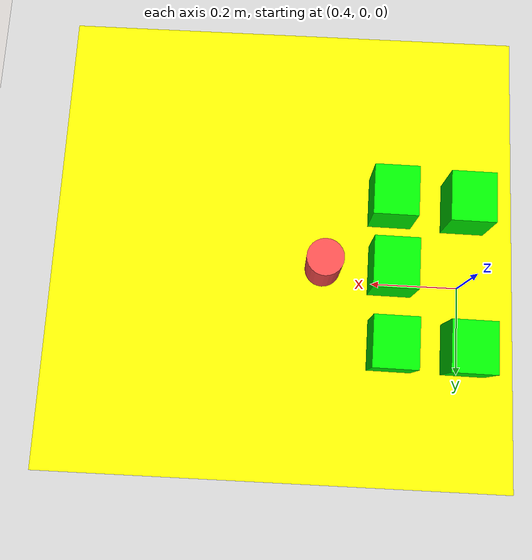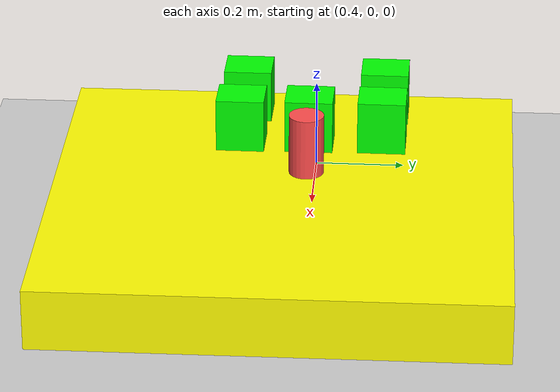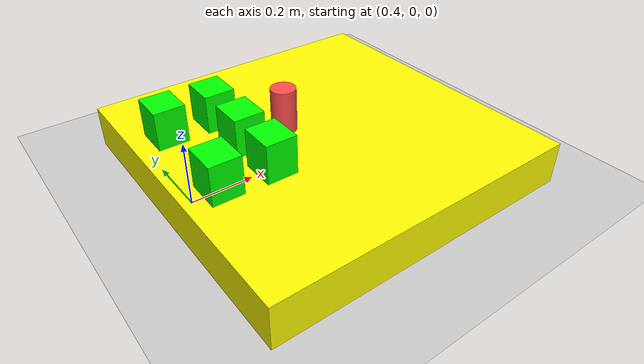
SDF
<sdf version="1.6">
 <world name="default">
  <light name="sun" type="directional">
   <pose>0 0 10 0 -0 0</pose>
   <diffuse>0.8 0.8 0.8 1</diffuse>
   <specular>0.1 0.1 0.1 1</specular>
   <attenuation>
    <range>1000</range>
    <constant>0.9</constant>
    <linear>0.01</linear>
    <quadratic>0.001</quadratic>
   </attenuation>
   <direction>-0.5 0.5 -1</direction>
  </light>
  <model name="ground_plane">
   <static>1</static>
   <link name="link">
    <collision name="collision">
     <geometry><plane><normal>0 0 1</normal><size>100 100</size></plane></geometry>
     <surface><friction><ode><mu>100</mu><mu2>50</mu2></ode></friction></surface>
    </collision>
    <visual name="visual">
     <cast_shadows>0</cast_shadows>
     <geometry><plane><normal>0 0 1</normal><size>100 100</size></plane></geometry>
     <material>
      <script><uri>file://media/materials/scripts/gazebo.material</uri><name>Gazebo/Grey</name></script>
     </material>
    </visual>
   </link>
  </model>
  <gravity>0 0 -9.8</gravity>
  <magnetic_field>6e-06 2.3e-05 -4.2e-05</magnetic_field>
  <atmosphere type="adiabatic"/>
  <physics name="default_physics" default="0" type="ode">
   <max_step_size>0.001</max_step_size>
   <real_time_factor>1</real_time_factor>
   <real_time_update_rate>1000</real_time_update_rate>
  </physics>
  <scene><ambient>0.4 0.4 0.4 1</ambient><background>0.7 0.7 0.7 1</background><shadows>1</shadows></scene>
  <spherical_coordinates>
   <surface_model>EARTH_WGS84</surface_model>
   <latitude_deg>0</latitude_deg>
   <longitude_deg>0</longitude_deg>
   <elevation>0</elevation>
   <heading_deg>0</heading_deg>
  </spherical_coordinates>
  <model name="unit_box_0_0_0">
   <link name="link">
    <inertial>
     <mass>100</mass>
     <inertia>
      <ixx>0.166667</ixx>
      <ixy>0</ixy>
      <ixz>0</ixz>
      <iyy>0.166667</iyy>
      <iyz>0</iyz>
      <izz>0.166667</izz>
     </inertia>
    </inertial>
    <visual name="visual">
     <geometry><box><size>1 1 0.134445</size></box></geometry>
     <material>
      <script><name>Gazebo/Grey</name><uri>file://media/materials/scripts/gazebo.material</uri></script>
      <ambient>0.3 0.3 0.3 1</ambient>
      <diffuse>1 0.99 0 1</diffuse>
      <specular>0.01 0.01 0.01 1</specular>
      <emissive>0 0 0 1</emissive>
      <shader type="vertex"><normal_map>__default__</normal_map></shader>
     </material>
    </visual>
    <collision name="collision">
     <geometry><box><size>1 1 0.134445</size></box></geometry>
     <surface>
      <friction>
       <ode><mu>1</mu><mu2>1</mu2><fdir1>0 0 0</fdir1><slip1>0</slip1><slip2>0</slip2></ode>
       <torsional>
        <coefficient>1</coefficient>
        <patch_radius>0</patch_radius>
        <surface_radius>0</surface_radius>
        <use_patch_radius>1</use_patch_radius>
        <ode><slip>0</slip></ode>
       </torsional>
      </friction>
      <bounce><restitution_coefficient>0</restitution_coefficient><threshold>1e+06</threshold></bounce>
      <contact>
       <collide_without_contact>0</collide_without_contact>
       <collide_without_contact_bitmask>1</collide_without_contact_bitmask>
       <collide_bitmask>1</collide_bitmask>
       <ode>
        <soft_cfm>0</soft_cfm>
        <soft_erp>0.2</soft_erp>
        <kp>1e+13</kp>
        <kd>1</kd>
        <max_vel>0.01</max_vel>
        <min_depth>0</min_depth>
       </ode>
       <bullet>
        <split_impulse>1</split_impulse>
        <split_impulse_penetration_threshold>-0.01</split_impulse_penetration_threshold>
        <soft_cfm>0</soft_cfm>
        <soft_erp>0.2</soft_erp>
        <kp>1e+13</kp>
        <kd>1</kd>
       </bullet>
      </contact>
     </surface>
    </collision>
   </link>
   <static>1</static>
   <pose>0.810858 -0.053495 0.067217 0 1.2e-05 -7.4e-05</pose>
  </model>
  <model name="green_box_0_0">
   <link name="link">
    <inertial>
     <mass>10</mass>
     <inertia>
      <ixx>0.166667</ixx>
      <ixy>0</ixy>
      <ixz>0</ixz>
      <iyy>0.166667</iyy>
      <iyz>0</iyz>
      <izz>0.166667</izz>
     </inertia>
    </inertial>
    <visual name="visual">
     <geometry><box><size>0.093811 0.10635 0.119204</size></box></geometry>
     <material>
      <script><name>Gazebo/Grey</name><uri>file://media/materials/scripts/gazebo.material</uri></script>
      <ambient>0.3 0.3 0.3 1</ambient>
      <diffuse>0 1 0 0</diffuse>
      <specular>0 1 0 0</specular>
      <emissive>0 0 0 1</emissive>
      <shader type="vertex"><normal_map>__default__</normal_map></shader>
     </material>
    </visual>
    <collision name="collision">
     <geometry><box><size>0.093811 0.10635 0.119204</size></box></geometry>
     <surface>
      <friction>
       <ode><mu>1</mu><mu2>1</mu2><fdir1>0 0 0</fdir1><slip1>0</slip1><slip2>0</slip2></ode>
       <torsional>
        <coefficient>1</coefficient>
        <patch_radius>0</patch_radius>
        <surface_radius>0</surface_radius>
        <use_patch_radius>1</use_patch_radius>
        <ode><slip>0</slip></ode>
       </torsional>
      </friction>
      <bounce><restitution_coefficient>0</restitution_coefficient><threshold>1e+06</threshold></bounce>
      <contact>
       <collide_without_contact>0</collide_without_contact>
       <collide_without_contact_bitmask>1</collide_without_contact_bitmask>
       <collide_bitmask>1</collide_bitmask>
       <ode>
        <soft_cfm>0</soft_cfm>
        <soft_erp>0.2</soft_erp>
        <kp>1e+13</kp>
        <kd>1</kd>
        <max_vel>0.01</max_vel>
        <min_depth>0</min_depth>
       </ode>
       <bullet>
        <split_impulse>1</split_impulse>
        <split_impulse_penetration_threshold>-0.01</split_impulse_penetration_threshold>
        <soft_cfm>0</soft_cfm>
        <soft_erp>0.2</soft_erp>
        <kp>1e+13</kp>
        <kd>1</kd>
       </bullet>
      </contact>
     </surface>
    </collision>
   </link>
   <static>0</static>
   <pose>0.575998 -0.006353 0.194044 0 1.2e-05 -0.0108</pose>
  </model>
  <model name="green_box_0_0_clone">
   <link name="link">
    <inertial>
     <mass>10</mass>
     <inertia>
      <ixx>0.166667</ixx>
      <ixy>0</ixy>
      <ixz>0</ixz>
      <iyy>0.166667</iyy>
      <iyz>0</iyz>
      <izz>0.166667</izz>
     </inertia>
    </inertial>
    <visual name="visual">
     <geometry><box><size>0.093811 0.10635 0.119204</size></box></geometry>
     <material>
      <script><name>Gazebo/Grey</name><uri>file://media/materials/scripts/gazebo.material</uri></script>
      <ambient>0.3 0.3 0.3 1</ambient>
      <diffuse>0 1 0 0</diffuse>
      <specular>0 1 0 0</specular>
      <emissive>0 0 0 1</emissive>
      <shader type="vertex"><normal_map>__default__</normal_map></shader>
     </material>
    </visual>
    <collision name="collision">
     <geometry><box><size>0.093811 0.10635 0.119204</size></box></geometry>
     <surface>
      <friction>
       <ode><mu>1</mu><mu2>1</mu2><fdir1>0 0 0</fdir1><slip1>0</slip1><slip2>0</slip2></ode>
       <torsional>
        <coefficient>1</coefficient>
        <patch_radius>0</patch_radius>
        <surface_radius>0</surface_radius>
        <use_patch_radius>1</use_patch_radius>
        <ode><slip>0</slip></ode>
       </torsional>
      </friction>
      <bounce><restitution_coefficient>0</restitution_coefficient><threshold>1e+06</threshold></bounce>
      <contact>
       <collide_without_contact>0</collide_without_contact>
       <collide_without_contact_bitmask>1</collide_without_contact_bitmask>
       <collide_bitmask>1</collide_bitmask>
       <ode>
        <soft_cfm>0</soft_cfm>
        <soft_erp>0.2</soft_erp>
        <kp>1e+13</kp>
        <kd>1</kd>
        <max_vel>0.01</max_vel>
        <min_depth>0</min_depth>
       </ode>
       <bullet>
        <split_impulse>1</split_impulse>
        <split_impulse_penetration_threshold>-0.01</split_impulse_penetration_threshold>
        <soft_cfm>0</soft_cfm>
        <soft_erp>0.2</soft_erp>
        <kp>1e+13</kp>
        <kd>1</kd>
       </bullet>
      </contact>
     </surface>
    </collision>
   </link>
   <static>0</static>
   <pose>0.573731 0.155128 0.194044 0 1.2e-05 -0.0108</pose>
  </model>
  <model name="green_box_0_0_clone_0">
   <link name="link">
    <inertial>
     <mass>10</mass>
     <inertia>
      <ixx>0.166667</ixx>
      <ixy>0</ixy>
      <ixz>0</ixz>
      <iyy>0.166667</iyy>
      <iyz>0</iyz>
      <izz>0.166667</izz>
     </inertia>
    </inertial>
    <visual name="visual">
     <geometry><box><size>0.093811 0.10635 0.119204</size></box></geometry>
     <material>
      <script><name>Gazebo/Grey</name><uri>file://media/materials/scripts/gazebo.material</uri></script>
      <ambient>0.3 0.3 0.3 1</ambient>
      <diffuse>0 1 0 0</diffuse>
      <specular>0 1 0 0</specular>
      <emissive>0 0 0 1</emissive>
      <shader type="vertex"><normal_map>__default__</normal_map></shader>
     </material>
    </visual>
    <collision name="collision">
     <geometry><box><size>0.093811 0.10635 0.119204</size></box></geometry>
     <surface>
      <friction>
       <ode><mu>1</mu><mu2>1</mu2><fdir1>0 0 0</fdir1><slip1>0</slip1><slip2>0</slip2></ode>
       <torsional>
        <coefficient>1</coefficient>
        <patch_radius>0</patch_radius>
        <surface_radius>0</surface_radius>
        <use_patch_radius>1</use_patch_radius>
        <ode><slip>0</slip></ode>
       </torsional>
      </friction>
      <bounce><restitution_coefficient>0</restitution_coefficient><threshold>1e+06</threshold></bounce>
      <contact>
       <collide_without_contact>0</collide_without_contact>
       <collide_without_contact_bitmask>1</collide_without_contact_bitmask>
       <collide_bitmask>1</collide_bitmask>
       <ode>
        <soft_cfm>0</soft_cfm>
        <soft_erp>0.2</soft_erp>
        <kp>1e+13</kp>
        <kd>1</kd>
        <max_vel>0.01</max_vel>
        <min_depth>0</min_depth>
       </ode>
       <bullet>
        <split_impulse>1</split_impulse>
        <split_impulse_penetration_threshold>-0.01</split_impulse_penetration_threshold>
        <soft_cfm>0</soft_cfm>
        <soft_erp>0.2</soft_erp>
        <kp>1e+13</kp>
        <kd>1</kd>
       </bullet>
      </contact>
     </surface>
    </collision>
   </link>
   <static>0</static>
   <pose>0.578889 -0.158553 0.194044 0 1.2e-05 -0.0108</pose>
  </model>
  <model name="green_box_0_0_clone_1">
   <link name="link">
    <inertial>
     <mass>10</mass>
     <inertia>
      <ixx>0.166667</ixx>
      <ixy>0</ixy>
      <ixz>0</ixz>
      <iyy>0.166667</iyy>
      <iyz>0</iyz>
      <izz>0.166667</izz>
     </inertia>
    </inertial>
    <visual name="visual">
     <geometry><box><size>0.093811 0.10635 0.119204</size></box></geometry>
     <material>
      <script><name>Gazebo/Grey</name><uri>file://media/materials/scripts/gazebo.material</uri></script>
      <ambient>0.3 0.3 0.3 1</ambient>
      <diffuse>0 1 0 0</diffuse>
      <specular>0 1 0 0</specular>
      <emissive>0 0 0 1</emissive>
      <shader type="vertex"><normal_map>__default__</normal_map></shader>
     </material>
    </visual>
    <collision name="collision">
     <geometry><box><size>0.093811 0.10635 0.119204</size></box></geometry>
     <surface>
      <friction>
       <ode><mu>1</mu><mu2>1</mu2><fdir1>0 0 0</fdir1><slip1>0</slip1><slip2>0</slip2></ode>
       <torsional>
        <coefficient>1</coefficient>
        <patch_radius>0</patch_radius>
        <surface_radius>0</surface_radius>
        <use_patch_radius>1</use_patch_radius>
        <ode><slip>0</slip></ode>
       </torsional>
      </friction>
      <bounce><restitution_coefficient>0</restitution_coefficient><threshold>1e+06</threshold></bounce>
      <contact>
       <collide_without_contact>0</collide_without_contact>
       <collide_without_contact_bitmask>1</collide_without_contact_bitmask>
       <collide_bitmask>1</collide_bitmask>
       <ode>
        <soft_cfm>0</soft_cfm>
        <soft_erp>0.2</soft_erp>
        <kp>1e+13</kp>
        <kd>1</kd>
        <max_vel>0.01</max_vel>
        <min_depth>0</min_depth>
       </ode>
       <bullet>
        <split_impulse>1</split_impulse>
        <split_impulse_penetration_threshold>-0.01</split_impulse_penetration_threshold>
        <soft_cfm>0</soft_cfm>
        <soft_erp>0.2</soft_erp>
        <kp>1e+13</kp>
        <kd>1</kd>
       </bullet>
      </contact>
     </surface>
    </collision>
   </link>
   <static>0</static>
   <pose>0.417347 0.156738 0.194046 0 1.2e-05 -0.0108</pose>
  </model>
  <model name="green_box_0_0_clone_2">
   <link name="link">
    <inertial>
     <mass>10</mass>
     <inertia>
      <ixx>0.166667</ixx>
      <ixy>0</ixy>
      <ixz>0</ixz>
      <iyy>0.166667</iyy>
      <iyz>0</iyz>
      <izz>0.166667</izz>
     </inertia>
    </inertial>
    <visual name="visual">
     <geometry><box><size>0.093811 0.10635 0.119204</size></box></geometry>
     <material>
      <script><name>Gazebo/Grey</name><uri>file://media/materials/scripts/gazebo.material</uri></script>
      <ambient>0.3 0.3 0.3 1</ambient>
      <diffuse>0 1 0 0</diffuse>
      <specular>0 1 0 0</specular>
      <emissive>0 0 0 1</emissive>
      <shader type="vertex"><normal_map>__default__</normal_map></shader>
     </material>
    </visual>
    <collision name="collision">
     <geometry><box><size>0.093811 0.10635 0.119204</size></box></geometry>
     <surface>
      <friction>
       <ode><mu>1</mu><mu2>1</mu2><fdir1>0 0 0</fdir1><slip1>0</slip1><slip2>0</slip2></ode>
       <torsional>
        <coefficient>1</coefficient>
        <patch_radius>0</patch_radius>
        <surface_radius>0</surface_radius>
        <use_patch_radius>1</use_patch_radius>
        <ode><slip>0</slip></ode>
       </torsional>
      </friction>
      <bounce><restitution_coefficient>0</restitution_coefficient><threshold>1e+06</threshold></bounce>
      <contact>
       <collide_without_contact>0</collide_without_contact>
       <collide_without_contact_bitmask>1</collide_without_contact_bitmask>
       <collide_bitmask>1</collide_bitmask>
       <ode>
        <soft_cfm>0</soft_cfm>
        <soft_erp>0.2</soft_erp>
        <kp>1e+13</kp>
        <kd>1</kd>
        <max_vel>0.01</max_vel>
        <min_depth>0</min_depth>
       </ode>
       <bullet>
        <split_impulse>1</split_impulse>
        <split_impulse_penetration_threshold>-0.01</split_impulse_penetration_threshold>
        <soft_cfm>0</soft_cfm>
        <soft_erp>0.2</soft_erp>
        <kp>1e+13</kp>
        <kd>1</kd>
       </bullet>
      </contact>
     </surface>
    </collision>
   </link>
   <static>0</static>
   <pose>0.419436 -0.152296 0.194046 0 1.2e-05 -0.0108</pose>
  </model>
  <model name="unit_cylinder_0_0_clone">
   <link name="link">
    <inertial>
     <mass>1</mass>
     <inertia><ixx>0.145833</ixx><ixy>0</ixy><ixz>0</ixz><iyy>0.145833</iyy><iyz>0</iyz><izz>0.125</izz></inertia>
    </inertial>
    <visual name="visual">
     <geometry><cylinder><radius>0.0383329</radius><length>0.153691</length></cylinder></geometry>
     <material>
      <script><name>Gazebo/Grey</name><uri>file://media/materials/scripts/gazebo.material</uri></script>
      <ambient>1 0.3 0.3 1</ambient>
      <diffuse>0.7 0.7 0.7 1</diffuse>
      <specular>0.01 0.01 0.01 1</specular>
      <emissive>0 0 0 1</emissive>
      <shader type="vertex"><normal_map>__default__</normal_map></shader>
     </material>
    </visual>
    <collision name="collision">
     <geometry><cylinder><radius>0.0383329</radius><length>0.153691</length></cylinder></geometry>
     <surface>
      <friction>
       <ode><mu>1</mu><mu2>1</mu2><fdir1>0 0 0</fdir1><slip1>0</slip1><slip2>0</slip2></ode>
       <torsional>
        <coefficient>1</coefficient>
        <patch_radius>0</patch_radius>
        <surface_radius>0</surface_radius>
        <use_patch_radius>1</use_patch_radius>
        <ode><slip>0</slip></ode>
       </torsional>
      </friction>
      <bounce><restitution_coefficient>0</restitution_coefficient><threshold>1e+06</threshold></bounce>
      <contact>
       <collide_without_contact>0</collide_without_contact>
       <collide_without_contact_bitmask>1</collide_without_contact_bitmask>
       <collide_bitmask>1</collide_bitmask>
       <ode>
        <soft_cfm>0</soft_cfm>
        <soft_erp>0.2</soft_erp>
        <kp>1e+13</kp>
        <kd>1</kd>
        <max_vel>0.01</max_vel>
        <min_depth>0</min_depth>
       </ode>
       <bullet>
        <split_impulse>1</split_impulse>
        <split_impulse_penetration_threshold>-0.01</split_impulse_penetration_threshold>
        <soft_cfm>0</soft_cfm>
        <soft_erp>0.2</soft_erp>
        <kp>1e+13</kp>
        <kd>1</kd>
       </bullet>
      </contact>
     </surface>
    </collision>
   </link>
   <static>0</static>
   <pose>0.721735 -0.005697 0.194043 -4e-06 -4e-06 -0</pose>
  </model>
 </world>
</sdf>
